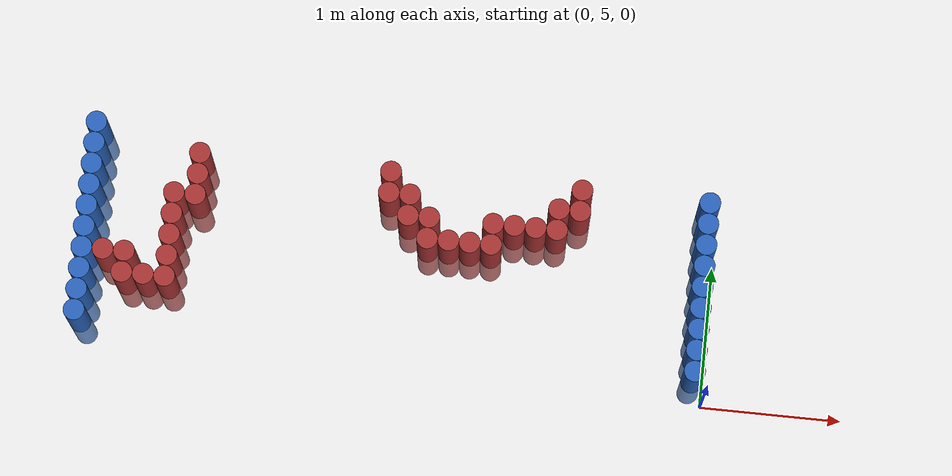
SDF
<sdf version="1.6">
 <world name="default">
  <model name="ground_plane">
   <static>1</static>
   <link name="link">
    <collision name="collision">
     <geometry><plane><normal>0 0 1</normal><size>100 100</size></plane></geometry>
     <surface><friction><ode><mu>100</mu><mu2>50</mu2></ode></friction></surface>
    </collision>
    <visual name="visual">
     <cast_shadows>0</cast_shadows>
     <geometry><plane><normal>0 0 1</normal><size>100 100</size></plane></geometry>
     <material>
      <script><uri>file://media/materials/scripts/gazebo.material</uri><name>Gazebo/Grey</name></script>
     </material>
    </visual>
   </link>
  </model>
  <model name="unit_cylinder_96">
   <static>1</static>
   <pose>-4.425000 5.175000 0.000000 0.000000 0.000000 0.000000</pose>
   <link name="link">
    <inertial>
     <mass>1</mass>
     <inertia><ixx>0.145833</ixx><ixy>0</ixy><ixz>0</ixz><iyy>0.145833</iyy><iyz>0</iyz><izz>0.125</izz></inertia>
    </inertial>
    <collision name="collision">
     <geometry><cylinder><radius>0.075000</radius><length>1</length></cylinder></geometry>
    </collision>
    <visual name="visual">
     <geometry><cylinder><radius>0.075000</radius><length>1</length></cylinder></geometry>
     <material>
      <ambient>0.152000 0.379000 0.720000 1</ambient>
      <diffuse>0.152000 0.379000 0.720000 1</diffuse>
     </material>
     <material>
      <script><name>Gazebo/Grey</name><uri>file://media/materials/scripts/gazebo.material</uri></script>
     </material>
    </visual>
   </link>
  </model>
  <model name="unit_cylinder_97">
   <static>1</static>
   <pose>-4.425000 5.325000 0.000000 0.000000 0.000000 0.000000</pose>
   <link name="link">
    <inertial>
     <mass>1</mass>
     <inertia><ixx>0.145833</ixx><ixy>0</ixy><ixz>0</ixz><iyy>0.145833</iyy><iyz>0</iyz><izz>0.125</izz></inertia>
    </inertial>
    <collision name="collision">
     <geometry><cylinder><radius>0.075000</radius><length>1</length></cylinder></geometry>
    </collision>
    <visual name="visual">
     <geometry><cylinder><radius>0.075000</radius><length>1</length></cylinder></geometry>
     <material>
      <ambient>0.152000 0.379000 0.720000 1</ambient>
      <diffuse>0.152000 0.379000 0.720000 1</diffuse>
     </material>
     <material>
      <script><name>Gazebo/Grey</name><uri>file://media/materials/scripts/gazebo.material</uri></script>
     </material>
    </visual>
   </link>
  </model>
  <model name="unit_cylinder_98">
   <static>1</static>
   <pose>-4.425000 5.475000 0.000000 0.000000 0.000000 0.000000</pose>
   <link name="link">
    <inertial>
     <mass>1</mass>
     <inertia><ixx>0.145833</ixx><ixy>0</ixy><ixz>0</ixz><iyy>0.145833</iyy><iyz>0</iyz><izz>0.125</izz></inertia>
    </inertial>
    <collision name="collision">
     <geometry><cylinder><radius>0.075000</radius><length>1</length></cylinder></geometry>
    </collision>
    <visual name="visual">
     <geometry><cylinder><radius>0.075000</radius><length>1</length></cylinder></geometry>
     <material>
      <ambient>0.152000 0.379000 0.720000 1</ambient>
      <diffuse>0.152000 0.379000 0.720000 1</diffuse>
     </material>
     <material>
      <script><name>Gazebo/Grey</name><uri>file://media/materials/scripts/gazebo.material</uri></script>
     </material>
    </visual>
   </link>
  </model>
  <model name="unit_cylinder_99">
   <static>1</static>
   <pose>-4.425000 5.625000 0.000000 0.000000 0.000000 0.000000</pose>
   <link name="link">
    <inertial>
     <mass>1</mass>
     <inertia><ixx>0.145833</ixx><ixy>0</ixy><ixz>0</ixz><iyy>0.145833</iyy><iyz>0</iyz><izz>0.125</izz></inertia>
    </inertial>
    <collision name="collision">
     <geometry><cylinder><radius>0.075000</radius><length>1</length></cylinder></geometry>
    </collision>
    <visual name="visual">
     <geometry><cylinder><radius>0.075000</radius><length>1</length></cylinder></geometry>
     <material>
      <ambient>0.152000 0.379000 0.720000 1</ambient>
      <diffuse>0.152000 0.379000 0.720000 1</diffuse>
     </material>
     <material>
      <script><name>Gazebo/Grey</name><uri>file://media/materials/scripts/gazebo.material</uri></script>
     </material>
    </visual>
   </link>
  </model>
  <model name="unit_cylinder_100">
   <static>1</static>
   <pose>-4.425000 5.775000 0.000000 0.000000 0.000000 0.000000</pose>
   <link name="link">
    <inertial>
     <mass>1</mass>
     <inertia><ixx>0.145833</ixx><ixy>0</ixy><ixz>0</ixz><iyy>0.145833</iyy><iyz>0</iyz><izz>0.125</izz></inertia>
    </inertial>
    <collision name="collision">
     <geometry><cylinder><radius>0.075000</radius><length>1</length></cylinder></geometry>
    </collision>
    <visual name="visual">
     <geometry><cylinder><radius>0.075000</radius><length>1</length></cylinder></geometry>
     <material>
      <ambient>0.152000 0.379000 0.720000 1</ambient>
      <diffuse>0.152000 0.379000 0.720000 1</diffuse>
     </material>
     <material>
      <script><name>Gazebo/Grey</name><uri>file://media/materials/scripts/gazebo.material</uri></script>
     </material>
    </visual>
   </link>
  </model>
  <model name="unit_cylinder_101">
   <static>1</static>
   <pose>-4.425000 5.925000 0.000000 0.000000 0.000000 0.000000</pose>
   <link name="link">
    <inertial>
     <mass>1</mass>
     <inertia><ixx>0.145833</ixx><ixy>0</ixy><ixz>0</ixz><iyy>0.145833</iyy><iyz>0</iyz><izz>0.125</izz></inertia>
    </inertial>
    <collision name="collision">
     <geometry><cylinder><radius>0.075000</radius><length>1</length></cylinder></geometry>
    </collision>
    <visual name="visual">
     <geometry><cylinder><radius>0.075000</radius><length>1</length></cylinder></geometry>
     <material>
      <ambient>0.152000 0.379000 0.720000 1</ambient>
      <diffuse>0.152000 0.379000 0.720000 1</diffuse>
     </material>
     <material>
      <script><name>Gazebo/Grey</name><uri>file://media/materials/scripts/gazebo.material</uri></script>
     </material>
    </visual>
   </link>
  </model>
  <model name="unit_cylinder_102">
   <static>1</static>
   <pose>-4.425000 6.075000 0.000000 0.000000 0.000000 0.000000</pose>
   <link name="link">
    <inertial>
     <mass>1</mass>
     <inertia><ixx>0.145833</ixx><ixy>0</ixy><ixz>0</ixz><iyy>0.145833</iyy><iyz>0</iyz><izz>0.125</izz></inertia>
    </inertial>
    <collision name="collision">
     <geometry><cylinder><radius>0.075000</radius><length>1</length></cylinder></geometry>
    </collision>
    <visual name="visual">
     <geometry><cylinder><radius>0.075000</radius><length>1</length></cylinder></geometry>
     <material>
      <ambient>0.152000 0.379000 0.720000 1</ambient>
      <diffuse>0.152000 0.379000 0.720000 1</diffuse>
     </material>
     <material>
      <script><name>Gazebo/Grey</name><uri>file://media/materials/scripts/gazebo.material</uri></script>
     </material>
    </visual>
   </link>
  </model>
  <model name="unit_cylinder_103">
   <static>1</static>
   <pose>-4.425000 6.225000 0.000000 0.000000 0.000000 0.000000</pose>
   <link name="link">
    <inertial>
     <mass>1</mass>
     <inertia><ixx>0.145833</ixx><ixy>0</ixy><ixz>0</ixz><iyy>0.145833</iyy><iyz>0</iyz><izz>0.125</izz></inertia>
    </inertial>
    <collision name="collision">
     <geometry><cylinder><radius>0.075000</radius><length>1</length></cylinder></geometry>
    </collision>
    <visual name="visual">
     <geometry><cylinder><radius>0.075000</radius><length>1</length></cylinder></geometry>
     <material>
      <ambient>0.152000 0.379000 0.720000 1</ambient>
      <diffuse>0.152000 0.379000 0.720000 1</diffuse>
     </material>
     <material>
      <script><name>Gazebo/Grey</name><uri>file://media/materials/scripts/gazebo.material</uri></script>
     </material>
    </visual>
   </link>
  </model>
  <model name="unit_cylinder_104">
   <static>1</static>
   <pose>-4.425000 6.375000 0.000000 0.000000 0.000000 0.000000</pose>
   <link name="link">
    <inertial>
     <mass>1</mass>
     <inertia><ixx>0.145833</ixx><ixy>0</ixy><ixz>0</ixz><iyy>0.145833</iyy><iyz>0</iyz><izz>0.125</izz></inertia>
    </inertial>
    <collision name="collision">
     <geometry><cylinder><radius>0.075000</radius><length>1</length></cylinder></geometry>
    </collision>
    <visual name="visual">
     <geometry><cylinder><radius>0.075000</radius><length>1</length></cylinder></geometry>
     <material>
      <ambient>0.152000 0.379000 0.720000 1</ambient>
      <diffuse>0.152000 0.379000 0.720000 1</diffuse>
     </material>
     <material>
      <script><name>Gazebo/Grey</name><uri>file://media/materials/scripts/gazebo.material</uri></script>
     </material>
    </visual>
   </link>
  </model>
  <model name="unit_cylinder_105">
   <static>1</static>
   <pose>-4.425000 6.525000 0.000000 0.000000 0.000000 0.000000</pose>
   <link name="link">
    <inertial>
     <mass>1</mass>
     <inertia><ixx>0.145833</ixx><ixy>0</ixy><ixz>0</ixz><iyy>0.145833</iyy><iyz>0</iyz><izz>0.125</izz></inertia>
    </inertial>
    <collision name="collision">
     <geometry><cylinder><radius>0.075000</radius><length>1</length></cylinder></geometry>
    </collision>
    <visual name="visual">
     <geometry><cylinder><radius>0.075000</radius><length>1</length></cylinder></geometry>
     <material>
      <ambient>0.152000 0.379000 0.720000 1</ambient>
      <diffuse>0.152000 0.379000 0.720000 1</diffuse>
     </material>
     <material>
      <script><name>Gazebo/Grey</name><uri>file://media/materials/scripts/gazebo.material</uri></script>
     </material>
    </visual>
   </link>
  </model>
  <model name="unit_cylinder_126">
   <static>1</static>
   <pose>-4.275000 5.625000 0.000000 0.000000 0.000000 0.000000</pose>
   <link name="link">
    <inertial>
     <mass>1</mass>
     <inertia><ixx>0.145833</ixx><ixy>0</ixy><ixz>0</ixz><iyy>0.145833</iyy><iyz>0</iyz><izz>0.125</izz></inertia>
    </inertial>
    <collision name="collision">
     <geometry><cylinder><radius>0.075000</radius><length>1</length></cylinder></geometry>
    </collision>
    <visual name="visual">
     <geometry><cylinder><radius>0.075000</radius><length>1</length></cylinder></geometry>
     <material>
      <ambient>0.648000 0.192000 0.192000 1</ambient>
      <diffuse>0.648000 0.192000 0.192000 1</diffuse>
     </material>
     <material>
      <script><name>Gazebo/Grey</name><uri>file://media/materials/scripts/gazebo.material</uri></script>
     </material>
    </visual>
   </link>
  </model>
  <model name="unit_cylinder_128">
   <static>1</static>
   <pose>-4.125000 5.475000 0.000000 0.000000 0.000000 0.000000</pose>
   <link name="link">
    <inertial>
     <mass>1</mass>
     <inertia><ixx>0.145833</ixx><ixy>0</ixy><ixz>0</ixz><iyy>0.145833</iyy><iyz>0</iyz><izz>0.125</izz></inertia>
    </inertial>
    <collision name="collision">
     <geometry><cylinder><radius>0.075000</radius><length>1</length></cylinder></geometry>
    </collision>
    <visual name="visual">
     <geometry><cylinder><radius>0.075000</radius><length>1</length></cylinder></geometry>
     <material>
      <ambient>0.648000 0.192000 0.192000 1</ambient>
      <diffuse>0.648000 0.192000 0.192000 1</diffuse>
     </material>
     <material>
      <script><name>Gazebo/Grey</name><uri>file://media/materials/scripts/gazebo.material</uri></script>
     </material>
    </visual>
   </link>
  </model>
  <model name="unit_cylinder_129">
   <static>1</static>
   <pose>-4.125000 5.625000 0.000000 0.000000 0.000000 0.000000</pose>
   <link name="link">
    <inertial>
     <mass>1</mass>
     <inertia><ixx>0.145833</ixx><ixy>0</ixy><ixz>0</ixz><iyy>0.145833</iyy><iyz>0</iyz><izz>0.125</izz></inertia>
    </inertial>
    <collision name="collision">
     <geometry><cylinder><radius>0.075000</radius><length>1</length></cylinder></geometry>
    </collision>
    <visual name="visual">
     <geometry><cylinder><radius>0.075000</radius><length>1</length></cylinder></geometry>
     <material>
      <ambient>0.648000 0.192000 0.192000 1</ambient>
      <diffuse>0.648000 0.192000 0.192000 1</diffuse>
     </material>
     <material>
      <script><name>Gazebo/Grey</name><uri>file://media/materials/scripts/gazebo.material</uri></script>
     </material>
    </visual>
   </link>
  </model>
  <model name="unit_cylinder_131">
   <static>1</static>
   <pose>-3.975000 5.475000 0.000000 0.000000 0.000000 0.000000</pose>
   <link name="link">
    <inertial>
     <mass>1</mass>
     <inertia><ixx>0.145833</ixx><ixy>0</ixy><ixz>0</ixz><iyy>0.145833</iyy><iyz>0</iyz><izz>0.125</izz></inertia>
    </inertial>
    <collision name="collision">
     <geometry><cylinder><radius>0.075000</radius><length>1</length></cylinder></geometry>
    </collision>
    <visual name="visual">
     <geometry><cylinder><radius>0.075000</radius><length>1</length></cylinder></geometry>
     <material>
      <ambient>0.648000 0.192000 0.192000 1</ambient>
      <diffuse>0.648000 0.192000 0.192000 1</diffuse>
     </material>
     <material>
      <script><name>Gazebo/Grey</name><uri>file://media/materials/scripts/gazebo.material</uri></script>
     </material>
    </visual>
   </link>
  </model>
  <model name="unit_cylinder_133">
   <static>1</static>
   <pose>-3.825000 5.475000 0.000000 0.000000 0.000000 0.000000</pose>
   <link name="link">
    <inertial>
     <mass>1</mass>
     <inertia><ixx>0.145833</ixx><ixy>0</ixy><ixz>0</ixz><iyy>0.145833</iyy><iyz>0</iyz><izz>0.125</izz></inertia>
    </inertial>
    <collision name="collision">
     <geometry><cylinder><radius>0.075000</radius><length>1</length></cylinder></geometry>
    </collision>
    <visual name="visual">
     <geometry><cylinder><radius>0.075000</radius><length>1</length></cylinder></geometry>
     <material>
      <ambient>0.648000 0.192000 0.192000 1</ambient>
      <diffuse>0.648000 0.192000 0.192000 1</diffuse>
     </material>
     <material>
      <script><name>Gazebo/Grey</name><uri>file://media/materials/scripts/gazebo.material</uri></script>
     </material>
    </visual>
   </link>
  </model>
  <model name="unit_cylinder_134">
   <static>1</static>
   <pose>-3.825000 5.625000 0.000000 0.000000 0.000000 0.000000</pose>
   <link name="link">
    <inertial>
     <mass>1</mass>
     <inertia><ixx>0.145833</ixx><ixy>0</ixy><ixz>0</ixz><iyy>0.145833</iyy><iyz>0</iyz><izz>0.125</izz></inertia>
    </inertial>
    <collision name="collision">
     <geometry><cylinder><radius>0.075000</radius><length>1</length></cylinder></geometry>
    </collision>
    <visual name="visual">
     <geometry><cylinder><radius>0.075000</radius><length>1</length></cylinder></geometry>
     <material>
      <ambient>0.648000 0.192000 0.192000 1</ambient>
      <diffuse>0.648000 0.192000 0.192000 1</diffuse>
     </material>
     <material>
      <script><name>Gazebo/Grey</name><uri>file://media/materials/scripts/gazebo.material</uri></script>
     </material>
    </visual>
   </link>
  </model>
  <model name="unit_cylinder_135">
   <static>1</static>
   <pose>-3.825000 5.775000 0.000000 0.000000 0.000000 0.000000</pose>
   <link name="link">
    <inertial>
     <mass>1</mass>
     <inertia><ixx>0.145833</ixx><ixy>0</ixy><ixz>0</ixz><iyy>0.145833</iyy><iyz>0</iyz><izz>0.125</izz></inertia>
    </inertial>
    <collision name="collision">
     <geometry><cylinder><radius>0.075000</radius><length>1</length></cylinder></geometry>
    </collision>
    <visual name="visual">
     <geometry><cylinder><radius>0.075000</radius><length>1</length></cylinder></geometry>
     <material>
      <ambient>0.648000 0.192000 0.192000 1</ambient>
      <diffuse>0.648000 0.192000 0.192000 1</diffuse>
     </material>
     <material>
      <script><name>Gazebo/Grey</name><uri>file://media/materials/scripts/gazebo.material</uri></script>
     </material>
    </visual>
   </link>
  </model>
  <model name="unit_cylinder_136">
   <static>1</static>
   <pose>-3.825000 5.925000 0.000000 0.000000 0.000000 0.000000</pose>
   <link name="link">
    <inertial>
     <mass>1</mass>
     <inertia><ixx>0.145833</ixx><ixy>0</ixy><ixz>0</ixz><iyy>0.145833</iyy><iyz>0</iyz><izz>0.125</izz></inertia>
    </inertial>
    <collision name="collision">
     <geometry><cylinder><radius>0.075000</radius><length>1</length></cylinder></geometry>
    </collision>
    <visual name="visual">
     <geometry><cylinder><radius>0.075000</radius><length>1</length></cylinder></geometry>
     <material>
      <ambient>0.648000 0.192000 0.192000 1</ambient>
      <diffuse>0.648000 0.192000 0.192000 1</diffuse>
     </material>
     <material>
      <script><name>Gazebo/Grey</name><uri>file://media/materials/scripts/gazebo.material</uri></script>
     </material>
    </visual>
   </link>
  </model>
  <model name="unit_cylinder_137">
   <static>1</static>
   <pose>-3.825000 6.075000 0.000000 0.000000 0.000000 0.000000</pose>
   <link name="link">
    <inertial>
     <mass>1</mass>
     <inertia><ixx>0.145833</ixx><ixy>0</ixy><ixz>0</ixz><iyy>0.145833</iyy><iyz>0</iyz><izz>0.125</izz></inertia>
    </inertial>
    <collision name="collision">
     <geometry><cylinder><radius>0.075000</radius><length>1</length></cylinder></geometry>
    </collision>
    <visual name="visual">
     <geometry><cylinder><radius>0.075000</radius><length>1</length></cylinder></geometry>
     <material>
      <ambient>0.648000 0.192000 0.192000 1</ambient>
      <diffuse>0.648000 0.192000 0.192000 1</diffuse>
     </material>
     <material>
      <script><name>Gazebo/Grey</name><uri>file://media/materials/scripts/gazebo.material</uri></script>
     </material>
    </visual>
   </link>
  </model>
  <model name="unit_cylinder_139">
   <static>1</static>
   <pose>-3.675000 6.075000 0.000000 0.000000 0.000000 0.000000</pose>
   <link name="link">
    <inertial>
     <mass>1</mass>
     <inertia><ixx>0.145833</ixx><ixy>0</ixy><ixz>0</ixz><iyy>0.145833</iyy><iyz>0</iyz><izz>0.125</izz></inertia>
    </inertial>
    <collision name="collision">
     <geometry><cylinder><radius>0.075000</radius><length>1</length></cylinder></geometry>
    </collision>
    <visual name="visual">
     <geometry><cylinder><radius>0.075000</radius><length>1</length></cylinder></geometry>
     <material>
      <ambient>0.648000 0.192000 0.192000 1</ambient>
      <diffuse>0.648000 0.192000 0.192000 1</diffuse>
     </material>
     <material>
      <script><name>Gazebo/Grey</name><uri>file://media/materials/scripts/gazebo.material</uri></script>
     </material>
    </visual>
   </link>
  </model>
  <model name="unit_cylinder_140">
   <static>1</static>
   <pose>-3.675000 6.225000 0.000000 0.000000 0.000000 0.000000</pose>
   <link name="link">
    <inertial>
     <mass>1</mass>
     <inertia><ixx>0.145833</ixx><ixy>0</ixy><ixz>0</ixz><iyy>0.145833</iyy><iyz>0</iyz><izz>0.125</izz></inertia>
    </inertial>
    <collision name="collision">
     <geometry><cylinder><radius>0.075000</radius><length>1</length></cylinder></geometry>
    </collision>
    <visual name="visual">
     <geometry><cylinder><radius>0.075000</radius><length>1</length></cylinder></geometry>
     <material>
      <ambient>0.648000 0.192000 0.192000 1</ambient>
      <diffuse>0.648000 0.192000 0.192000 1</diffuse>
     </material>
     <material>
      <script><name>Gazebo/Grey</name><uri>file://media/materials/scripts/gazebo.material</uri></script>
     </material>
    </visual>
   </link>
  </model>
  <model name="unit_cylinder_141">
   <static>1</static>
   <pose>-3.675000 6.375000 0.000000 0.000000 0.000000 0.000000</pose>
   <link name="link">
    <inertial>
     <mass>1</mass>
     <inertia><ixx>0.145833</ixx><ixy>0</ixy><ixz>0</ixz><iyy>0.145833</iyy><iyz>0</iyz><izz>0.125</izz></inertia>
    </inertial>
    <collision name="collision">
     <geometry><cylinder><radius>0.075000</radius><length>1</length></cylinder></geometry>
    </collision>
    <visual name="visual">
     <geometry><cylinder><radius>0.075000</radius><length>1</length></cylinder></geometry>
     <material>
      <ambient>0.648000 0.192000 0.192000 1</ambient>
      <diffuse>0.648000 0.192000 0.192000 1</diffuse>
     </material>
     <material>
      <script><name>Gazebo/Grey</name><uri>file://media/materials/scripts/gazebo.material</uri></script>
     </material>
    </visual>
   </link>
  </model>
  <model name="unit_cylinder_171">
   <static>1</static>
   <pose>-2.325000 6.225000 0.000000 0.000000 0.000000 0.000000</pose>
   <link name="link">
    <inertial>
     <mass>1</mass>
     <inertia><ixx>0.145833</ixx><ixy>0</ixy><ixz>0</ixz><iyy>0.145833</iyy><iyz>0</iyz><izz>0.125</izz></inertia>
    </inertial>
    <collision name="collision">
     <geometry><cylinder><radius>0.075000</radius><length>1</length></cylinder></geometry>
    </collision>
    <visual name="visual">
     <geometry><cylinder><radius>0.075000</radius><length>1</length></cylinder></geometry>
     <material>
      <ambient>0.648000 0.192000 0.192000 1</ambient>
      <diffuse>0.648000 0.192000 0.192000 1</diffuse>
     </material>
     <material>
      <script><name>Gazebo/Grey</name><uri>file://media/materials/scripts/gazebo.material</uri></script>
     </material>
    </visual>
   </link>
  </model>
  <model name="unit_cylinder_172">
   <static>1</static>
   <pose>-2.325000 6.375000 0.000000 0.000000 0.000000 0.000000</pose>
   <link name="link">
    <inertial>
     <mass>1</mass>
     <inertia><ixx>0.145833</ixx><ixy>0</ixy><ixz>0</ixz><iyy>0.145833</iyy><iyz>0</iyz><izz>0.125</izz></inertia>
    </inertial>
    <collision name="collision">
     <geometry><cylinder><radius>0.075000</radius><length>1</length></cylinder></geometry>
    </collision>
    <visual name="visual">
     <geometry><cylinder><radius>0.075000</radius><length>1</length></cylinder></geometry>
     <material>
      <ambient>0.648000 0.192000 0.192000 1</ambient>
      <diffuse>0.648000 0.192000 0.192000 1</diffuse>
     </material>
     <material>
      <script><name>Gazebo/Grey</name><uri>file://media/materials/scripts/gazebo.material</uri></script>
     </material>
    </visual>
   </link>
  </model>
  <model name="unit_cylinder_177">
   <static>1</static>
   <pose>-2.175000 6.075000 0.000000 0.000000 0.000000 0.000000</pose>
   <link name="link">
    <inertial>
     <mass>1</mass>
     <inertia><ixx>0.145833</ixx><ixy>0</ixy><ixz>0</ixz><iyy>0.145833</iyy><iyz>0</iyz><izz>0.125</izz></inertia>
    </inertial>
    <collision name="collision">
     <geometry><cylinder><radius>0.075000</radius><length>1</length></cylinder></geometry>
    </collision>
    <visual name="visual">
     <geometry><cylinder><radius>0.075000</radius><length>1</length></cylinder></geometry>
     <material>
      <ambient>0.648000 0.192000 0.192000 1</ambient>
      <diffuse>0.648000 0.192000 0.192000 1</diffuse>
     </material>
     <material>
      <script><name>Gazebo/Grey</name><uri>file://media/materials/scripts/gazebo.material</uri></script>
     </material>
    </visual>
   </link>
  </model>
  <model name="unit_cylinder_178">
   <static>1</static>
   <pose>-2.175000 6.225000 0.000000 0.000000 0.000000 0.000000</pose>
   <link name="link">
    <inertial>
     <mass>1</mass>
     <inertia><ixx>0.145833</ixx><ixy>0</ixy><ixz>0</ixz><iyy>0.145833</iyy><iyz>0</iyz><izz>0.125</izz></inertia>
    </inertial>
    <collision name="collision">
     <geometry><cylinder><radius>0.075000</radius><length>1</length></cylinder></geometry>
    </collision>
    <visual name="visual">
     <geometry><cylinder><radius>0.075000</radius><length>1</length></cylinder></geometry>
     <material>
      <ambient>0.648000 0.192000 0.192000 1</ambient>
      <diffuse>0.648000 0.192000 0.192000 1</diffuse>
     </material>
     <material>
      <script><name>Gazebo/Grey</name><uri>file://media/materials/scripts/gazebo.material</uri></script>
     </material>
    </visual>
   </link>
  </model>
  <model name="unit_cylinder_188">
   <static>1</static>
   <pose>-2.025000 5.925000 0.000000 0.000000 0.000000 0.000000</pose>
   <link name="link">
    <inertial>
     <mass>1</mass>
     <inertia><ixx>0.145833</ixx><ixy>0</ixy><ixz>0</ixz><iyy>0.145833</iyy><iyz>0</iyz><izz>0.125</izz></inertia>
    </inertial>
    <collision name="collision">
     <geometry><cylinder><radius>0.075000</radius><length>1</length></cylinder></geometry>
    </collision>
    <visual name="visual">
     <geometry><cylinder><radius>0.075000</radius><length>1</length></cylinder></geometry>
     <material>
      <ambient>0.648000 0.192000 0.192000 1</ambient>
      <diffuse>0.648000 0.192000 0.192000 1</diffuse>
     </material>
     <material>
      <script><name>Gazebo/Grey</name><uri>file://media/materials/scripts/gazebo.material</uri></script>
     </material>
    </visual>
   </link>
  </model>
  <model name="unit_cylinder_189">
   <static>1</static>
   <pose>-2.025000 6.075000 0.000000 0.000000 0.000000 0.000000</pose>
   <link name="link">
    <inertial>
     <mass>1</mass>
     <inertia><ixx>0.145833</ixx><ixy>0</ixy><ixz>0</ixz><iyy>0.145833</iyy><iyz>0</iyz><izz>0.125</izz></inertia>
    </inertial>
    <collision name="collision">
     <geometry><cylinder><radius>0.075000</radius><length>1</length></cylinder></geometry>
    </collision>
    <visual name="visual">
     <geometry><cylinder><radius>0.075000</radius><length>1</length></cylinder></geometry>
     <material>
      <ambient>0.648000 0.192000 0.192000 1</ambient>
      <diffuse>0.648000 0.192000 0.192000 1</diffuse>
     </material>
     <material>
      <script><name>Gazebo/Grey</name><uri>file://media/materials/scripts/gazebo.material</uri></script>
     </material>
    </visual>
   </link>
  </model>
  <model name="unit_cylinder_197">
   <static>1</static>
   <pose>-1.875000 5.925000 0.000000 0.000000 0.000000 0.000000</pose>
   <link name="link">
    <inertial>
     <mass>1</mass>
     <inertia><ixx>0.145833</ixx><ixy>0</ixy><ixz>0</ixz><iyy>0.145833</iyy><iyz>0</iyz><izz>0.125</izz></inertia>
    </inertial>
    <collision name="collision">
     <geometry><cylinder><radius>0.075000</radius><length>1</length></cylinder></geometry>
    </collision>
    <visual name="visual">
     <geometry><cylinder><radius>0.075000</radius><length>1</length></cylinder></geometry>
     <material>
      <ambient>0.648000 0.192000 0.192000 1</ambient>
      <diffuse>0.648000 0.192000 0.192000 1</diffuse>
     </material>
     <material>
      <script><name>Gazebo/Grey</name><uri>file://media/materials/scripts/gazebo.material</uri></script>
     </material>
    </visual>
   </link>
  </model>
  <model name="unit_cylinder_203">
   <static>1</static>
   <pose>-1.725000 5.925000 0.000000 0.000000 0.000000 0.000000</pose>
   <link name="link">
    <inertial>
     <mass>1</mass>
     <inertia><ixx>0.145833</ixx><ixy>0</ixy><ixz>0</ixz><iyy>0.145833</iyy><iyz>0</iyz><izz>0.125</izz></inertia>
    </inertial>
    <collision name="collision">
     <geometry><cylinder><radius>0.075000</radius><length>1</length></cylinder></geometry>
    </collision>
    <visual name="visual">
     <geometry><cylinder><radius>0.075000</radius><length>1</length></cylinder></geometry>
     <material>
      <ambient>0.648000 0.192000 0.192000 1</ambient>
      <diffuse>0.648000 0.192000 0.192000 1</diffuse>
     </material>
     <material>
      <script><name>Gazebo/Grey</name><uri>file://media/materials/scripts/gazebo.material</uri></script>
     </material>
    </visual>
   </link>
  </model>
  <model name="unit_cylinder_205">
   <static>1</static>
   <pose>-1.575000 5.925000 0.000000 0.000000 0.000000 0.000000</pose>
   <link name="link">
    <inertial>
     <mass>1</mass>
     <inertia><ixx>0.145833</ixx><ixy>0</ixy><ixz>0</ixz><iyy>0.145833</iyy><iyz>0</iyz><izz>0.125</izz></inertia>
    </inertial>
    <collision name="collision">
     <geometry><cylinder><radius>0.075000</radius><length>1</length></cylinder></geometry>
    </collision>
    <visual name="visual">
     <geometry><cylinder><radius>0.075000</radius><length>1</length></cylinder></geometry>
     <material>
      <ambient>0.648000 0.192000 0.192000 1</ambient>
      <diffuse>0.648000 0.192000 0.192000 1</diffuse>
     </material>
     <material>
      <script><name>Gazebo/Grey</name><uri>file://media/materials/scripts/gazebo.material</uri></script>
     </material>
    </visual>
   </link>
  </model>
  <model name="unit_cylinder_206">
   <static>1</static>
   <pose>-1.575000 6.075000 0.000000 0.000000 0.000000 0.000000</pose>
   <link name="link">
    <inertial>
     <mass>1</mass>
     <inertia><ixx>0.145833</ixx><ixy>0</ixy><ixz>0</ixz><iyy>0.145833</iyy><iyz>0</iyz><izz>0.125</izz></inertia>
    </inertial>
    <collision name="collision">
     <geometry><cylinder><radius>0.075000</radius><length>1</length></cylinder></geometry>
    </collision>
    <visual name="visual">
     <geometry><cylinder><radius>0.075000</radius><length>1</length></cylinder></geometry>
     <material>
      <ambient>0.648000 0.192000 0.192000 1</ambient>
      <diffuse>0.648000 0.192000 0.192000 1</diffuse>
     </material>
     <material>
      <script><name>Gazebo/Grey</name><uri>file://media/materials/scripts/gazebo.material</uri></script>
     </material>
    </visual>
   </link>
  </model>
  <model name="unit_cylinder_208">
   <static>1</static>
   <pose>-1.425000 6.075000 0.000000 0.000000 0.000000 0.000000</pose>
   <link name="link">
    <inertial>
     <mass>1</mass>
     <inertia><ixx>0.145833</ixx><ixy>0</ixy><ixz>0</ixz><iyy>0.145833</iyy><iyz>0</iyz><izz>0.125</izz></inertia>
    </inertial>
    <collision name="collision">
     <geometry><cylinder><radius>0.075000</radius><length>1</length></cylinder></geometry>
    </collision>
    <visual name="visual">
     <geometry><cylinder><radius>0.075000</radius><length>1</length></cylinder></geometry>
     <material>
      <ambient>0.648000 0.192000 0.192000 1</ambient>
      <diffuse>0.648000 0.192000 0.192000 1</diffuse>
     </material>
     <material>
      <script><name>Gazebo/Grey</name><uri>file://media/materials/scripts/gazebo.material</uri></script>
     </material>
    </visual>
   </link>
  </model>
  <model name="unit_cylinder_210">
   <static>1</static>
   <pose>-1.275000 6.075000 0.000000 0.000000 0.000000 0.000000</pose>
   <link name="link">
    <inertial>
     <mass>1</mass>
     <inertia><ixx>0.145833</ixx><ixy>0</ixy><ixz>0</ixz><iyy>0.145833</iyy><iyz>0</iyz><izz>0.125</izz></inertia>
    </inertial>
    <collision name="collision">
     <geometry><cylinder><radius>0.075000</radius><length>1</length></cylinder></geometry>
    </collision>
    <visual name="visual">
     <geometry><cylinder><radius>0.075000</radius><length>1</length></cylinder></geometry>
     <material>
      <ambient>0.648000 0.192000 0.192000 1</ambient>
      <diffuse>0.648000 0.192000 0.192000 1</diffuse>
     </material>
     <material>
      <script><name>Gazebo/Grey</name><uri>file://media/materials/scripts/gazebo.material</uri></script>
     </material>
    </visual>
   </link>
  </model>
  <model name="unit_cylinder_212">
   <static>1</static>
   <pose>-1.125000 6.075000 0.000000 0.000000 0.000000 0.000000</pose>
   <link name="link">
    <inertial>
     <mass>1</mass>
     <inertia><ixx>0.145833</ixx><ixy>0</ixy><ixz>0</ixz><iyy>0.145833</iyy><iyz>0</iyz><izz>0.125</izz></inertia>
    </inertial>
    <collision name="collision">
     <geometry><cylinder><radius>0.075000</radius><length>1</length></cylinder></geometry>
    </collision>
    <visual name="visual">
     <geometry><cylinder><radius>0.075000</radius><length>1</length></cylinder></geometry>
     <material>
      <ambient>0.648000 0.192000 0.192000 1</ambient>
      <diffuse>0.648000 0.192000 0.192000 1</diffuse>
     </material>
     <material>
      <script><name>Gazebo/Grey</name><uri>file://media/materials/scripts/gazebo.material</uri></script>
     </material>
    </visual>
   </link>
  </model>
  <model name="unit_cylinder_213">
   <static>1</static>
   <pose>-1.125000 6.225000 0.000000 0.000000 0.000000 0.000000</pose>
   <link name="link">
    <inertial>
     <mass>1</mass>
     <inertia><ixx>0.145833</ixx><ixy>0</ixy><ixz>0</ixz><iyy>0.145833</iyy><iyz>0</iyz><izz>0.125</izz></inertia>
    </inertial>
    <collision name="collision">
     <geometry><cylinder><radius>0.075000</radius><length>1</length></cylinder></geometry>
    </collision>
    <visual name="visual">
     <geometry><cylinder><radius>0.075000</radius><length>1</length></cylinder></geometry>
     <material>
      <ambient>0.648000 0.192000 0.192000 1</ambient>
      <diffuse>0.648000 0.192000 0.192000 1</diffuse>
     </material>
     <material>
      <script><name>Gazebo/Grey</name><uri>file://media/materials/scripts/gazebo.material</uri></script>
     </material>
    </visual>
   </link>
  </model>
  <model name="unit_cylinder_219">
   <static>1</static>
   <pose>-0.975000 6.225000 0.000000 0.000000 0.000000 0.000000</pose>
   <link name="link">
    <inertial>
     <mass>1</mass>
     <inertia><ixx>0.145833</ixx><ixy>0</ixy><ixz>0</ixz><iyy>0.145833</iyy><iyz>0</iyz><izz>0.125</izz></inertia>
    </inertial>
    <collision name="collision">
     <geometry><cylinder><radius>0.075000</radius><length>1</length></cylinder></geometry>
    </collision>
    <visual name="visual">
     <geometry><cylinder><radius>0.075000</radius><length>1</length></cylinder></geometry>
     <material>
      <ambient>0.648000 0.192000 0.192000 1</ambient>
      <diffuse>0.648000 0.192000 0.192000 1</diffuse>
     </material>
     <material>
      <script><name>Gazebo/Grey</name><uri>file://media/materials/scripts/gazebo.material</uri></script>
     </material>
    </visual>
   </link>
  </model>
  <model name="unit_cylinder_220">
   <static>1</static>
   <pose>-0.975000 6.375000 0.000000 0.000000 0.000000 0.000000</pose>
   <link name="link">
    <inertial>
     <mass>1</mass>
     <inertia><ixx>0.145833</ixx><ixy>0</ixy><ixz>0</ixz><iyy>0.145833</iyy><iyz>0</iyz><izz>0.125</izz></inertia>
    </inertial>
    <collision name="collision">
     <geometry><cylinder><radius>0.075000</radius><length>1</length></cylinder></geometry>
    </collision>
    <visual name="visual">
     <geometry><cylinder><radius>0.075000</radius><length>1</length></cylinder></geometry>
     <material>
      <ambient>0.648000 0.192000 0.192000 1</ambient>
      <diffuse>0.648000 0.192000 0.192000 1</diffuse>
     </material>
     <material>
      <script><name>Gazebo/Grey</name><uri>file://media/materials/scripts/gazebo.material</uri></script>
     </material>
    </visual>
   </link>
  </model>
  <model name="unit_cylinder_255">
   <static>1</static>
   <pose>-0.075000 5.175000 0.000000 0.000000 0.000000 0.000000</pose>
   <link name="link">
    <inertial>
     <mass>1</mass>
     <inertia><ixx>0.145833</ixx><ixy>0</ixy><ixz>0</ixz><iyy>0.145833</iyy><iyz>0</iyz><izz>0.125</izz></inertia>
    </inertial>
    <collision name="collision">
     <geometry><cylinder><radius>0.075000</radius><length>1</length></cylinder></geometry>
    </collision>
    <visual name="visual">
     <geometry><cylinder><radius>0.075000</radius><length>1</length></cylinder></geometry>
     <material>
      <ambient>0.152000 0.379000 0.720000 1</ambient>
      <diffuse>0.152000 0.379000 0.720000 1</diffuse>
     </material>
     <material>
      <script><name>Gazebo/Grey</name><uri>file://media/materials/scripts/gazebo.material</uri></script>
     </material>
    </visual>
   </link>
  </model>
  <model name="unit_cylinder_256">
   <static>1</static>
   <pose>-0.075000 5.325000 0.000000 0.000000 0.000000 0.000000</pose>
   <link name="link">
    <inertial>
     <mass>1</mass>
     <inertia><ixx>0.145833</ixx><ixy>0</ixy><ixz>0</ixz><iyy>0.145833</iyy><iyz>0</iyz><izz>0.125</izz></inertia>
    </inertial>
    <collision name="collision">
     <geometry><cylinder><radius>0.075000</radius><length>1</length></cylinder></geometry>
    </collision>
    <visual name="visual">
     <geometry><cylinder><radius>0.075000</radius><length>1</length></cylinder></geometry>
     <material>
      <ambient>0.152000 0.379000 0.720000 1</ambient>
      <diffuse>0.152000 0.379000 0.720000 1</diffuse>
     </material>
     <material>
      <script><name>Gazebo/Grey</name><uri>file://media/materials/scripts/gazebo.material</uri></script>
     </material>
    </visual>
   </link>
  </model>
  <model name="unit_cylinder_257">
   <static>1</static>
   <pose>-0.075000 5.475000 0.000000 0.000000 0.000000 0.000000</pose>
   <link name="link">
    <inertial>
     <mass>1</mass>
     <inertia><ixx>0.145833</ixx><ixy>0</ixy><ixz>0</ixz><iyy>0.145833</iyy><iyz>0</iyz><izz>0.125</izz></inertia>
    </inertial>
    <collision name="collision">
     <geometry><cylinder><radius>0.075000</radius><length>1</length></cylinder></geometry>
    </collision>
    <visual name="visual">
     <geometry><cylinder><radius>0.075000</radius><length>1</length></cylinder></geometry>
     <material>
      <ambient>0.152000 0.379000 0.720000 1</ambient>
      <diffuse>0.152000 0.379000 0.720000 1</diffuse>
     </material>
     <material>
      <script><name>Gazebo/Grey</name><uri>file://media/materials/scripts/gazebo.material</uri></script>
     </material>
    </visual>
   </link>
  </model>
  <model name="unit_cylinder_258">
   <static>1</static>
   <pose>-0.075000 5.625000 0.000000 0.000000 0.000000 0.000000</pose>
   <link name="link">
    <inertial>
     <mass>1</mass>
     <inertia><ixx>0.145833</ixx><ixy>0</ixy><ixz>0</ixz><iyy>0.145833</iyy><iyz>0</iyz><izz>0.125</izz></inertia>
    </inertial>
    <collision name="collision">
     <geometry><cylinder><radius>0.075000</radius><length>1</length></cylinder></geometry>
    </collision>
    <visual name="visual">
     <geometry><cylinder><radius>0.075000</radius><length>1</length></cylinder></geometry>
     <material>
      <ambient>0.152000 0.379000 0.720000 1</ambient>
      <diffuse>0.152000 0.379000 0.720000 1</diffuse>
     </material>
     <material>
      <script><name>Gazebo/Grey</name><uri>file://media/materials/scripts/gazebo.material</uri></script>
     </material>
    </visual>
   </link>
  </model>
  <model name="unit_cylinder_259">
   <static>1</static>
   <pose>-0.075000 5.775000 0.000000 0.000000 0.000000 0.000000</pose>
   <link name="link">
    <inertial>
     <mass>1</mass>
     <inertia><ixx>0.145833</ixx><ixy>0</ixy><ixz>0</ixz><iyy>0.145833</iyy><iyz>0</iyz><izz>0.125</izz></inertia>
    </inertial>
    <collision name="collision">
     <geometry><cylinder><radius>0.075000</radius><length>1</length></cylinder></geometry>
    </collision>
    <visual name="visual">
     <geometry><cylinder><radius>0.075000</radius><length>1</length></cylinder></geometry>
     <material>
      <ambient>0.152000 0.379000 0.720000 1</ambient>
      <diffuse>0.152000 0.379000 0.720000 1</diffuse>
     </material>
     <material>
      <script><name>Gazebo/Grey</name><uri>file://media/materials/scripts/gazebo.material</uri></script>
     </material>
    </visual>
   </link>
  </model>
  <model name="unit_cylinder_260">
   <static>1</static>
   <pose>-0.075000 5.925000 0.000000 0.000000 0.000000 0.000000</pose>
   <link name="link">
    <inertial>
     <mass>1</mass>
     <inertia><ixx>0.145833</ixx><ixy>0</ixy><ixz>0</ixz><iyy>0.145833</iyy><iyz>0</iyz><izz>0.125</izz></inertia>
    </inertial>
    <collision name="collision">
     <geometry><cylinder><radius>0.075000</radius><length>1</length></cylinder></geometry>
    </collision>
    <visual name="visual">
     <geometry><cylinder><radius>0.075000</radius><length>1</length></cylinder></geometry>
     <material>
      <ambient>0.152000 0.379000 0.720000 1</ambient>
      <diffuse>0.152000 0.379000 0.720000 1</diffuse>
     </material>
     <material>
      <script><name>Gazebo/Grey</name><uri>file://media/materials/scripts/gazebo.material</uri></script>
     </material>
    </visual>
   </link>
  </model>
  <model name="unit_cylinder_261">
   <static>1</static>
   <pose>-0.075000 6.075000 0.000000 0.000000 0.000000 0.000000</pose>
   <link name="link">
    <inertial>
     <mass>1</mass>
     <inertia><ixx>0.145833</ixx><ixy>0</ixy><ixz>0</ixz><iyy>0.145833</iyy><iyz>0</iyz><izz>0.125</izz></inertia>
    </inertial>
    <collision name="collision">
     <geometry><cylinder><radius>0.075000</radius><length>1</length></cylinder></geometry>
    </collision>
    <visual name="visual">
     <geometry><cylinder><radius>0.075000</radius><length>1</length></cylinder></geometry>
     <material>
      <ambient>0.152000 0.379000 0.720000 1</ambient>
      <diffuse>0.152000 0.379000 0.720000 1</diffuse>
     </material>
     <material>
      <script><name>Gazebo/Grey</name><uri>file://media/materials/scripts/gazebo.material</uri></script>
     </material>
    </visual>
   </link>
  </model>
  <model name="unit_cylinder_262">
   <static>1</static>
   <pose>-0.075000 6.225000 0.000000 0.000000 0.000000 0.000000</pose>
   <link name="link">
    <inertial>
     <mass>1</mass>
     <inertia><ixx>0.145833</ixx><ixy>0</ixy><ixz>0</ixz><iyy>0.145833</iyy><iyz>0</iyz><izz>0.125</izz></inertia>
    </inertial>
    <collision name="collision">
     <geometry><cylinder><radius>0.075000</radius><length>1</length></cylinder></geometry>
    </collision>
    <visual name="visual">
     <geometry><cylinder><radius>0.075000</radius><length>1</length></cylinder></geometry>
     <material>
      <ambient>0.152000 0.379000 0.720000 1</ambient>
      <diffuse>0.152000 0.379000 0.720000 1</diffuse>
     </material>
     <material>
      <script><name>Gazebo/Grey</name><uri>file://media/materials/scripts/gazebo.material</uri></script>
     </material>
    </visual>
   </link>
  </model>
  <model name="unit_cylinder_263">
   <static>1</static>
   <pose>-0.075000 6.375000 0.000000 0.000000 0.000000 0.000000</pose>
   <link name="link">
    <inertial>
     <mass>1</mass>
     <inertia><ixx>0.145833</ixx><ixy>0</ixy><ixz>0</ixz><iyy>0.145833</iyy><iyz>0</iyz><izz>0.125</izz></inertia>
    </inertial>
    <collision name="collision">
     <geometry><cylinder><radius>0.075000</radius><length>1</length></cylinder></geometry>
    </collision>
    <visual name="visual">
     <geometry><cylinder><radius>0.075000</radius><length>1</length></cylinder></geometry>
     <material>
      <ambient>0.152000 0.379000 0.720000 1</ambient>
      <diffuse>0.152000 0.379000 0.720000 1</diffuse>
     </material>
     <material>
      <script><name>Gazebo/Grey</name><uri>file://media/materials/scripts/gazebo.material</uri></script>
     </material>
    </visual>
   </link>
  </model>
 </world>
</sdf>
